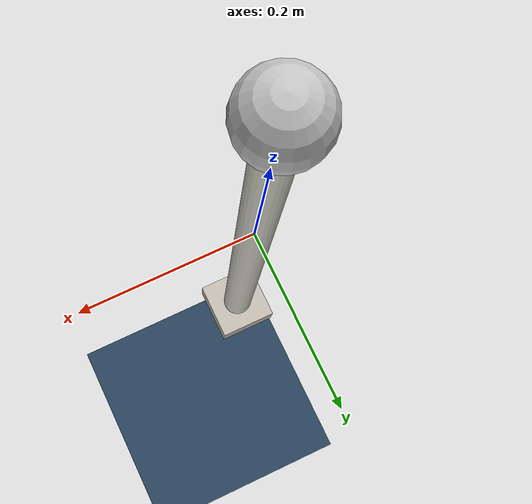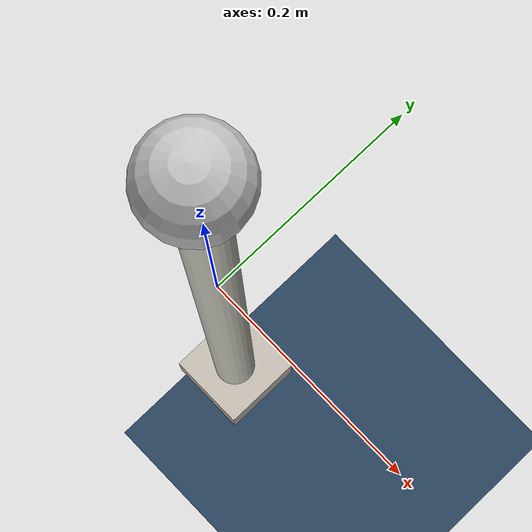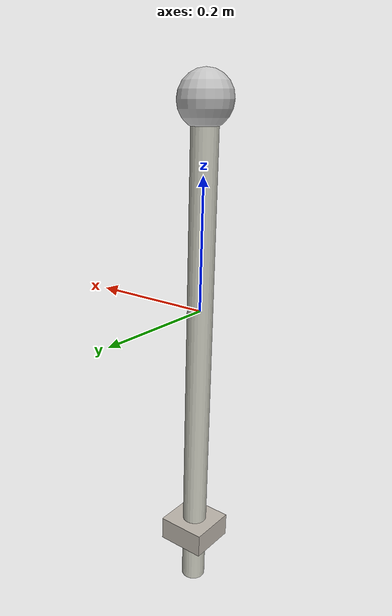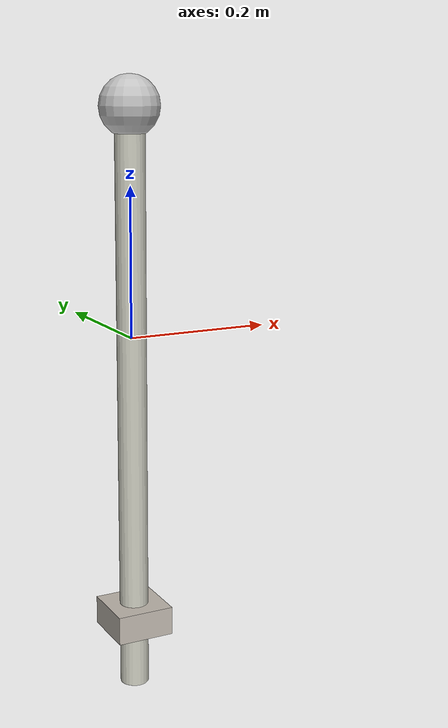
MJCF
<?xml version="1.0" encoding="utf-8"?>

<mujoco model="rotating_pole">
    <compiler eulerseq="XYZ" fitaabb="true" angle="radian" autolimits="true"/>
    <option timestep="0.001" gravity="0 0 -9.81"/>

    <asset>
        <texture name="skybox" type="skybox" builtin="gradient" rgb1="0.2 0.3 0.4" rgb2="0 0 0" width="1000" height="1000" mark="random" random="0.001" markrgb="1 1 1"/>
        <texture type="2d" name="groundplane" builtin="checker" mark="edge" rgb1="0.2 0.3 0.4" rgb2="0.1 0.2 0.3" markrgb="0.8 0.8 0.8" width="1000" height="1000"/>
        <material name="groundplane" texture="groundplane" texuniform="true" texrepeat="5 5" reflectance="0.2"/>
        <texture name="imu_texture" type="2d" file="./resource/imu.png"/>
        <material name="imu_material" texture="imu_texture" texuniform="false" texrepeat="1 1" reflectance="0.7" emission="0.1"/>
    </asset>

    <worldbody>
        <geom name="floor" pos="0 0 -1" size="5 5 0.1" type="plane" material="groundplane"/>
        <light directional="true" diffuse=".8 .8 .8" specular=".2 .2 .2" pos="0 0 3" dir="0 0 -1"/>

        <body name="hinge_mount" pos="0 0 0.3" mocap="true">
            <geom name="mount" type="sphere" size="0.04" rgba="0.75 0.75 0.75 1" mass="0.5" />

            <!-- pole and spin -->
            <body name="pole" pos="0 0 0" gravcomp="1">
                <inertial pos="0 0 -0.4" mass="0.5" diaginertia="0.1 0.1 0.01"/>
                <joint name="spin" type="ball" pos="0 0 0" limited="false"/>
                <geom name="pole_geom" type="cylinder" size="0.02 0.4" pos="0 0 -0.4" rgba="0.8 0.8 0.75 1" mass="0.5" />

                <!-- imu site -->
                <site name="imu" pos="0 0 -0.7"/>
                <geom name="imu_visual" type="box" size="0.04 0.04 0.02" pos="0 0 -0.7" material="imu_material" mass="0.05"/>
            </body>
        </body>

        <light pos="0 0 2" dir="0 0 -1" diffuse="0.8 0.8 0.8"/>
    </worldbody>

    <actuator>
        <velocity name="motor" joint="spin" kv="200" gear="1" ctrlrange="-10 10"/>
    </actuator>

    <sensor>
        <gyro name="angular-velocity" site="imu" noise="0"/>
        <accelerometer name="linear-acceleration" site="imu" noise="0"/>
        <framequat name="orientation" objtype="site" objname="imu" noise="0"/>
    </sensor>
</mujoco>
